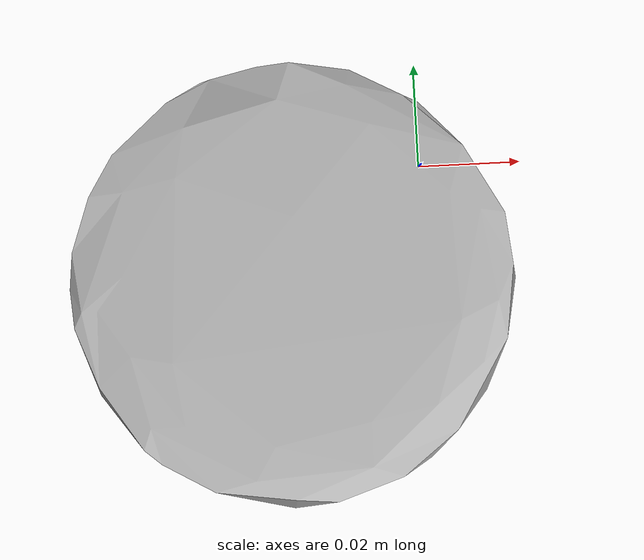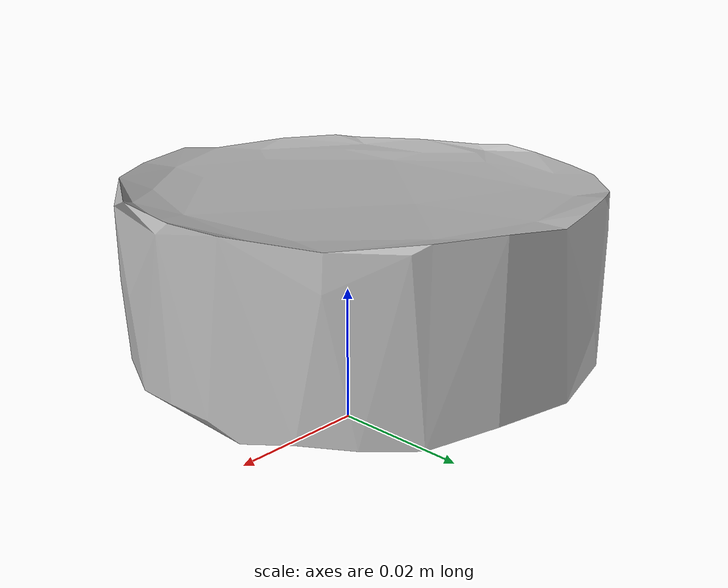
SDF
<?xml version='1.0'?>
<sdf version="1.4">
  <model name="007_tuna_fish_can">
    <static>false</static>
    <link name="link">
      <inertial>
        <pose>-0.026075278208867087 -0.02213444120500632 0.01372933385762147 -0.23873424367955964 -1.5693722119946079 0.24170597151298878</pose>
        <mass>0.018688964970924603</mass>
        <inertia>
          <ixx>1.665435448810063e-05</ixx>
          <ixy>2.2610058378615383e-21</ixy>
          <ixz>-2.494453279054277e-23</ixz>
          <iyy>1.0052757598400355e-05</iyy>
          <iyz>3.839532787987905e-23</iyz>
          <izz>1.0043819597505729e-05</izz>
        </inertia>
      </inertial>
      <collision name="collision">
        <geometry>
          <mesh>
            <!-- Use a downsampled mesh for collisions -->
            <uri>model:///007_tuna_fish_can/007_tuna_fish_can_250_collision.stl</uri>
	        </mesh>
        </geometry>
        <surface>
      </surface>
      </collision>
      <visual name="visual">
        <geometry>
          <mesh>
            <uri>model:///007_tuna_fish_can/textured.obj</uri>
	        </mesh>
        </geometry>
        <material>
          <script>
            <uri>model:///007_tuna_fish_can/007_tuna_fish_can.material</uri>
            <name>007_tuna_fish_can</name>
          </script>
        </material>
      </visual>
    </link>
  </model>
</sdf>
